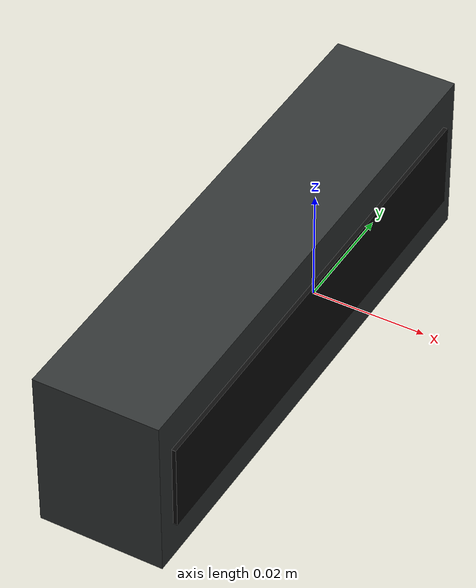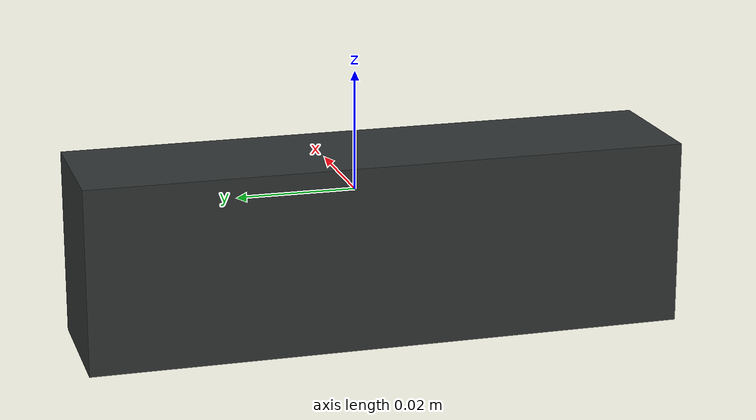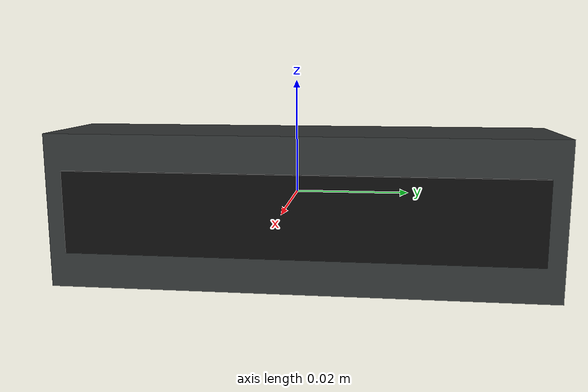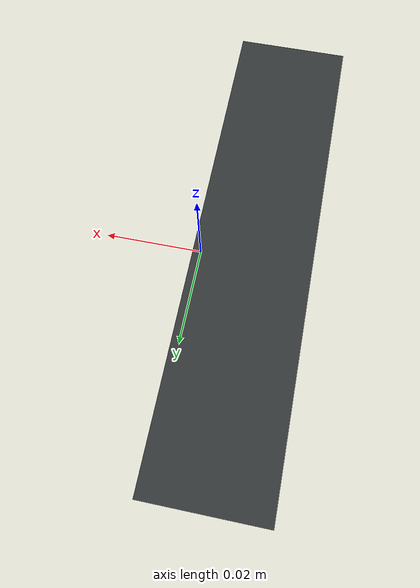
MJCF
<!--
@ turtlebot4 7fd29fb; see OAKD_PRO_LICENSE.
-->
<mujoco model="oakd_pro">
  <compiler angle="radian" autolimits="true"/>

  <asset>
    <!-- The source DAE's own phong diffuse (0.19216 0.2039 0.2039): the device's dark grey shell. -->
    <material name="oakd_body" rgba="0.192 0.204 0.204 1" specular="0.4" shininess="0.3"/>
    <material name="oakd_glass" rgba="0.05 0.05 0.05 1" specular="0.6" shininess="0.6"/>
  </asset>

  <worldbody>
    <body name="mount">
      <inertial pos="0 0 0" mass="0.061" diaginertia="2.02475e-06 1.52732e-05 1.605536e-05"/>
      <geom name="oakd_visual" type="box" pos="-0.011 0 -0.005" size="0.01125 0.0485 0.015"
            material="oakd_body"/>
      <geom name="oakd_front" type="box" pos="0.0006 0 -0.005"
            size="0.0004 0.045 0.008" material="oakd_glass" contype="0" conaffinity="0"/>
      <camera name="oakd_rgb" pos="0 0 0" xyaxes="0 -1 0 0 0 1"
              fovy="56.84" resolution="320 240"/>
    </body>
  </worldbody>
</mujoco>
